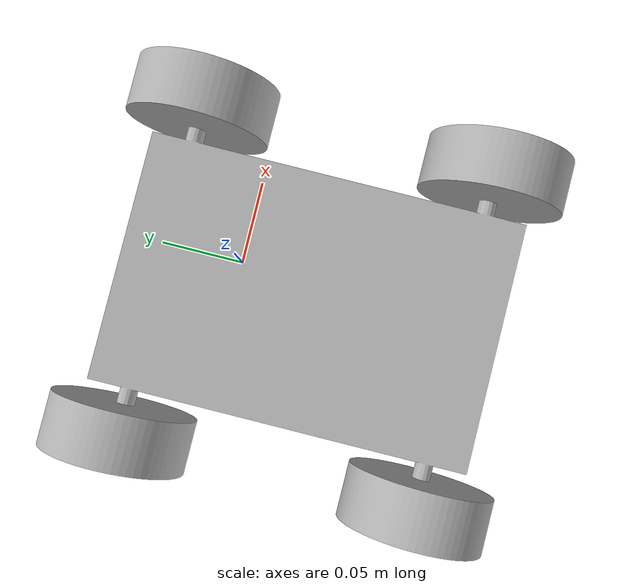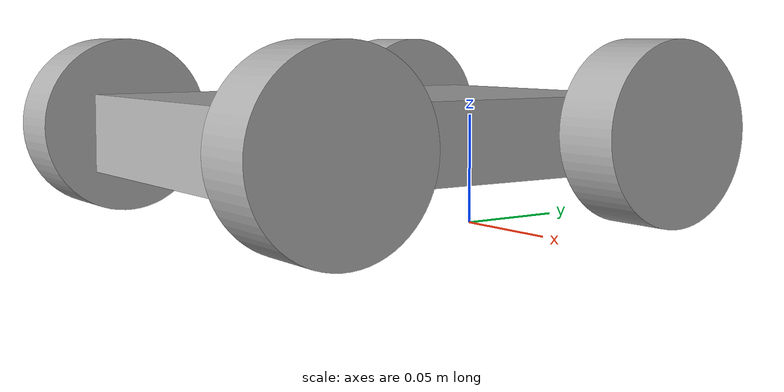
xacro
<?xml version="1.0" ?>
<robot name="vehicle" xmlns:xacro="http://www.ros.org/wiki/xacro">

<xacro:include filename="$(find vehicle_description)/urdf/materials.xacro" />
<xacro:include filename="$(find vehicle_description)/urdf/vehicle.trans" />
<xacro:include filename="$(find vehicle_description)/urdf/vehicle.gazebo" />

<link name="base_link">
  <inertial>
    <origin xyz="-0.01606475851680549 -0.045219197260877086 0.04262425563223347" rpy="0 0 0"/>
    <mass value="0.9837015926535903"/>
    <inertia ixx="0.003589" iyy="0.001628" izz="0.005017" ixy="0.0" iyz="-0.0" ixz="0.0"/>
  </inertial>
  <visual>
    <origin xyz="0 0 0" rpy="0 0 0"/>
    <geometry>
      <mesh filename="package://vehicle_description/meshes/base_link.stl" scale="0.001 0.001 0.001"/>
    </geometry>
    <material name="silver"/>
  </visual>
  <collision>
    <origin xyz="0 0 0" rpy="0 0 0"/>
    <geometry>
      <mesh filename="package://vehicle_description/meshes/base_link.stl" scale="0.001 0.001 0.001"/>
    </geometry>
  </collision>
</link>

<link name="Wheel_4">
  <inertial>
    <origin xyz="0.047883241483194484 0.12078080273912294 -0.04193572847767754" rpy="0 0 0"/>
    <mass value="0.15079644737231007"/>
    <inertia ixx="0.000121" iyy="7.2e-05" izz="7.2e-05" ixy="0.0" iyz="-0.0" ixz="0.0"/>
  </inertial>
  <visual>
    <origin xyz="-0.029052 0.083 -0.087052" rpy="0 0 0"/>
    <geometry>
      <mesh filename="package://vehicle_description/meshes/Wheel_4.stl" scale="0.001 0.001 0.001"/>
    </geometry>
    <material name="silver"/>
  </visual>
  <collision>
    <origin xyz="-0.029052 0.083 -0.087052" rpy="0 0 0"/>
    <geometry>
      <mesh filename="package://vehicle_description/meshes/Wheel_4.stl" scale="0.001 0.001 0.001"/>
    </geometry>
  </collision>
</link>

<link name="Wheel_3">
  <inertial>
    <origin xyz="0.04788324148319451 -0.211219197260877 -0.041935728477678055" rpy="0 0 0"/>
    <mass value="0.15079644737231007"/>
    <inertia ixx="0.000121" iyy="7.2e-05" izz="7.2e-05" ixy="0.0" iyz="0.0" ixz="0.0"/>
  </inertial>
  <visual>
    <origin xyz="-0.029052 -0.083 -0.087052" rpy="0 0 0"/>
    <geometry>
      <mesh filename="package://vehicle_description/meshes/Wheel_3.stl" scale="0.001 0.001 0.001"/>
    </geometry>
    <material name="silver"/>
  </visual>
  <collision>
    <origin xyz="-0.029052 -0.083 -0.087052" rpy="0 0 0"/>
    <geometry>
      <mesh filename="package://vehicle_description/meshes/Wheel_3.stl" scale="0.001 0.001 0.001"/>
    </geometry>
  </collision>
</link>

<link name="Wheel_1">
  <inertial>
    <origin xyz="-0.014999758516805545 -1.9726087711890994e-07 2.715223224591945e-07" rpy="0 0 0"/>
    <mass value="0.15079644737231007"/>
    <inertia ixx="0.000121" iyy="7.2e-05" izz="7.2e-05" ixy="0.0" iyz="0.0" ixz="0.0"/>
  </inertial>
  <visual>
    <origin xyz="0.094065 -0.037781 -0.045116" rpy="0 0 0"/>
    <geometry>
      <mesh filename="package://vehicle_description/meshes/Wheel_1.stl" scale="0.001 0.001 0.001"/>
    </geometry>
    <material name="silver"/>
  </visual>
  <collision>
    <origin xyz="0.094065 -0.037781 -0.045116" rpy="0 0 0"/>
    <geometry>
      <mesh filename="package://vehicle_description/meshes/Wheel_1.stl" scale="0.001 0.001 0.001"/>
    </geometry>
  </collision>
</link>

<link name="Wheel_2">
  <inertial>
    <origin xyz="-0.014999758516805503 -1.9726087707727658e-07 2.7152232194571635e-07" rpy="0 0 0"/>
    <mass value="0.15079644737231007"/>
    <inertia ixx="0.000121" iyy="7.2e-05" izz="7.2e-05" ixy="0.0" iyz="-0.0" ixz="0.0"/>
  </inertial>
  <visual>
    <origin xyz="0.094065 0.128219 -0.045116" rpy="0 0 0"/>
    <geometry>
      <mesh filename="package://vehicle_description/meshes/Wheel_2.stl" scale="0.001 0.001 0.001"/>
    </geometry>
    <material name="silver"/>
  </visual>
  <collision>
    <origin xyz="0.094065 0.128219 -0.045116" rpy="0 0 0"/>
    <geometry>
      <mesh filename="package://vehicle_description/meshes/Wheel_2.stl" scale="0.001 0.001 0.001"/>
    </geometry>
  </collision>
</link>

<joint name="Rev4" type="continuous">
  <origin xyz="0.029052 -0.083 0.087052" rpy="0 0 0"/>
  <parent link="base_link"/>
  <child link="Wheel_4"/>
  <axis xyz="1.0 0.0 0.0"/>
</joint>

<joint name="Rev3" type="continuous">
  <origin xyz="0.029052 0.083 0.087052" rpy="0 0 0"/>
  <parent link="base_link"/>
  <child link="Wheel_3"/>
  <axis xyz="1.0 0.0 0.0"/>
</joint>

<joint name="Rev1" type="continuous">
  <origin xyz="-0.094065 0.037781 0.045116" rpy="0 0 0"/>
  <parent link="base_link"/>
  <child link="Wheel_1"/>
  <axis xyz="-1.0 -0.0 -0.0"/>
</joint>

<joint name="Rev2" type="continuous">
  <origin xyz="-0.094065 -0.128219 0.045116" rpy="0 0 0"/>
  <parent link="base_link"/>
  <child link="Wheel_2"/>
  <axis xyz="-1.0 -0.0 -0.0"/>
</joint>

</robot>

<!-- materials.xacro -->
<robot name="vehicle" xmlns:xacro="http://www.ros.org/wiki/xacro" >

<material name="silver">
  <color rgba="0.700 0.700 0.700 1.000"/>
</material>

</robot>

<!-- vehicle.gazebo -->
<robot name="vehicle" xmlns:xacro="http://www.ros.org/wiki/xacro" >

<xacro:property name="body_color" value="Gazebo/Silver" />

<gazebo>
  <plugin name="control" filename="libgazebo_ros_control.so"/>
</gazebo>
<gazebo reference="base_link">
  <material>${body_color}</material>
  <mu1>0.2</mu1>
  <mu2>0.2</mu2>
  <selfCollide>true</selfCollide>
  <gravity>true</gravity>
</gazebo>

<gazebo reference="Wheel_4">
  <material>${body_color}</material>
  <mu1>0.2</mu1>
  <mu2>0.2</mu2>
  <selfCollide>true</selfCollide>
</gazebo>

<gazebo reference="Wheel_3">
  <material>${body_color}</material>
  <mu1>0.2</mu1>
  <mu2>0.2</mu2>
  <selfCollide>true</selfCollide>
</gazebo>

<gazebo reference="Wheel_1">
  <material>${body_color}</material>
  <mu1>0.2</mu1>
  <mu2>0.2</mu2>
  <selfCollide>true</selfCollide>
</gazebo>

<gazebo reference="Wheel_2">
  <material>${body_color}</material>
  <mu1>0.2</mu1>
  <mu2>0.2</mu2>
  <selfCollide>true</selfCollide>
</gazebo>

</robot>
